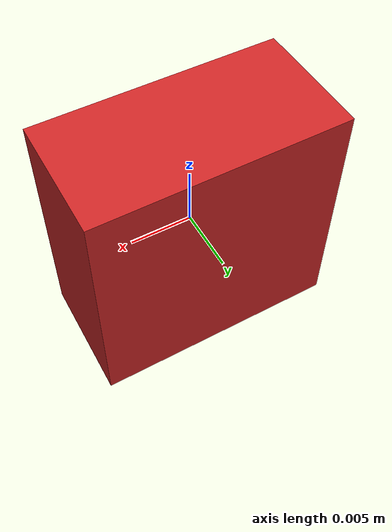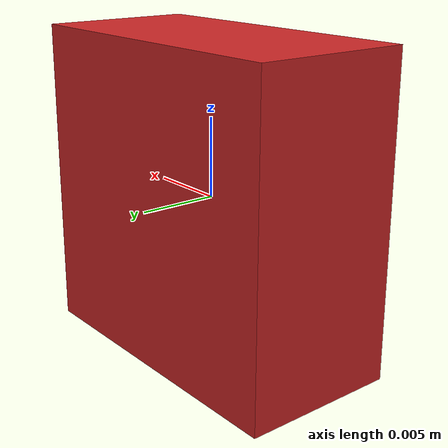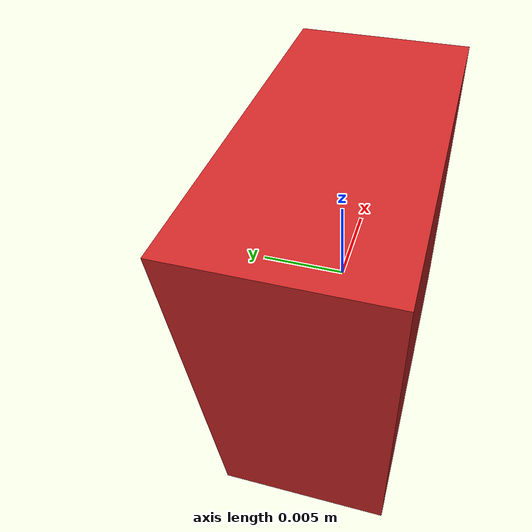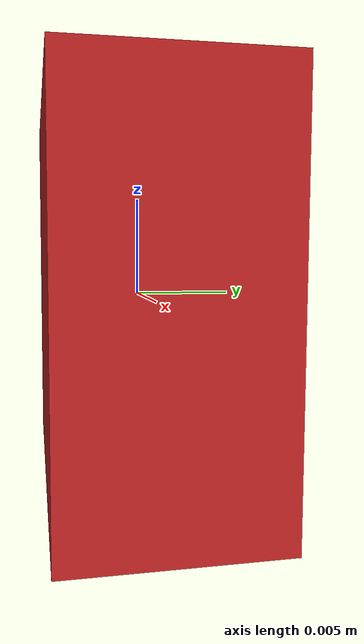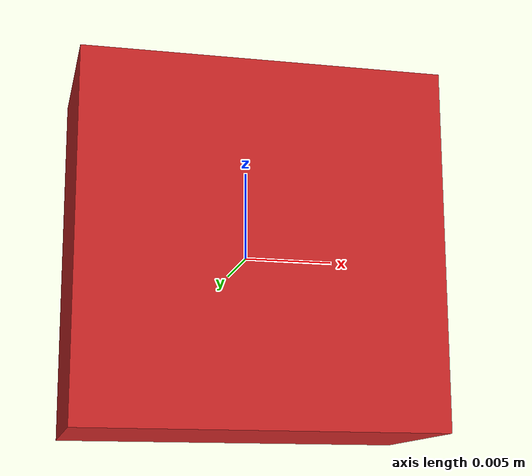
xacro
<?xml version="1.0" ?>

<robot name="button" xmlns:xacro="http://www.ros.org/wiki/xacro">

	<!-- Button Link -->

	<link name="button_link">

	<inertial>
		<mass value="0.00001" />
		<origin rpy="0 0 0" xyz="0 0 0" />
		<inertia ixx="1" ixy="1" ixz="1" iyy="1" iyz="1" izz="1" />
	</inertial>

	<visual>
		<origin rpy="0 0 0" xyz="0 0 0" />
		<geometry>
			<box size="0.02 0.01 0.02" />
		</geometry>
	</visual>

	<collision>
		<origin rpy="0 0 0" xyz="0 0 0" />
		<geometry>
			<box size="0.02 0.01 0.02" />
		</geometry>
	</collision>

	</link>

	<!-- Make red and fixed in Gazebo-->

	<gazebo reference="button_link">
		<material>Gazebo/Red</material>
	</gazebo>

	<gazebo>
		<static>true</static>
	</gazebo>

</robot>
